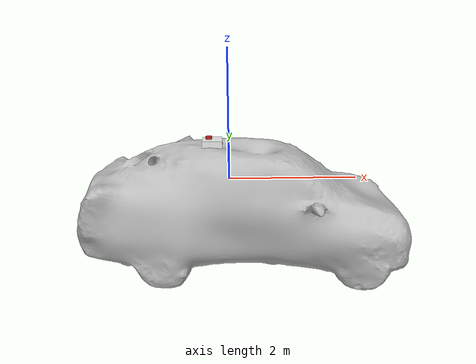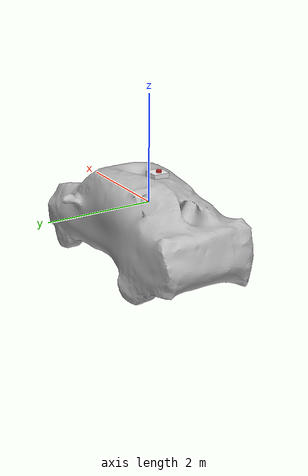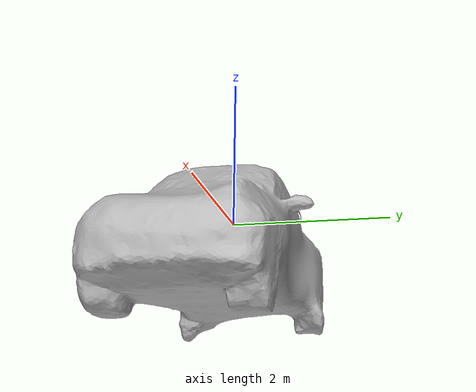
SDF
<?xml version='1.0'?>
<sdf version='1.7'>
  <model name='white-bot'>
    <model name='kare-whitecar'>
      <static>1</static>
      <link name='roof_link'>
        <pose>0 0 1.5 0 -0 0</pose>
        <self_collide>1</self_collide>
        <enable_wind>1</enable_wind>
        <kinematic>1</kinematic>
      </link>
      <link name='link'>
        <collision name='collision'>
          <geometry>
            <mesh>
              <scale>5 5 5</scale>
              <uri>model://kare-whitecar/meshes/kare-whitecar.obj</uri>
            </mesh>
          </geometry>
        </collision>
        <visual name='visual'>
          <geometry>
            <mesh>
              <scale>5 5 5</scale>
              <uri>model://kare-whitecar/meshes/kare-whitecar.obj</uri>
            </mesh>
          </geometry>
        </visual>
      </link>
      <pose>0.299701 0.023276 -0.492223 1.56718 0.006128 1.54946</pose>
    </model>
    <model name='my_bot'>
      <link name='base_link'>
        <inertial>
          <pose>0.041667 0 0.091667 0 -0 0</pose>
          <mass>0.6</mass>
          <inertia>
            <ixx>0.00559667</ixx>
            <ixy>0</ixy>
            <ixz>0.000416667</ixz>
            <iyy>0.005805</iyy>
            <iyz>0</iyz>
            <izz>0.00783333</izz>
          </inertia>
        </inertial>
        <sensor name='camera' type='camera'>
          <visualize>1</visualize>
          <update_rate>10</update_rate>
          <camera>
            <horizontal_fov>1.089</horizontal_fov>
            <image>
              <format>R8G8B8</format>
              <width>1920</width>
              <height>1080</height>
            </image>
            <clip>
              <near>0.05</near>
              <far>30</far>
            </clip>
          </camera>
          <plugin name='camera_controller' filename='libgazebo_ros_camera.so'>
            <frame_name>camera_link_optical</frame_name>
          </plugin>
          <pose>0.205 0 0.08 0 -0 0</pose>
        </sensor>
        <sensor name='laser' type='ray'>
          <visualize>0</visualize>
          <update_rate>10</update_rate>
          <ray>
            <scan>
              <horizontal>
                <samples>360</samples>
                <min_angle>-3.14</min_angle>
                <max_angle>3.14</max_angle>
                <resolution>1</resolution>
              </horizontal>
              <vertical>
                <samples>1</samples>
                <min_angle>0</min_angle>
                <max_angle>0</max_angle>
              </vertical>
            </scan>
            <range>
              <min>0.3</min>
              <max>12</max>
            </range>
          </ray>
          <plugin name='laser_controller' filename='libgazebo_ros_ray_sensor.so'>
            <ros>
              <argument>~/out:=scan</argument>
            </ros>
            <output_type>sensor_msgs/LaserScan</output_type>
            <frame_name>laser_frame</frame_name>
          </plugin>
          <pose>0 0 0.175 0 -0 0</pose>
        </sensor>
        <self_collide>0</self_collide>
        <enable_wind>0</enable_wind>
        <kinematic>0</kinematic>
        <pose>0 0 0 0 -0 0</pose>
        <visual name='base_link_fixed_joint_lump__chassis_visual'>
          <pose>0.05 0 0.075 0 -0 0</pose>
          <geometry>
            <box>
              <size>0.3 0.3 0.15</size>
            </box>
          </geometry>
          <material>
            <script>
              <name>Gazebo/White</name>
              <uri>file://media/materials/scripts/gazebo.material</uri>
            </script>
            <shader type='pixel'/>
          </material>
          <transparency>0</transparency>
          <cast_shadows>1</cast_shadows>
        </visual>
        <visual name='base_link_fixed_joint_lump__camera_link_visual_1'>
          <pose>0.205 0 0.08 0 -0 0</pose>
          <geometry>
            <box>
              <size>0.01 0.03 0.03</size>
            </box>
          </geometry>
          <material>
            <script>
              <name>Gazebo/Red</name>
              <uri>file://media/materials/scripts/gazebo.material</uri>
            </script>
            <shader type='pixel'/>
          </material>
          <transparency>0</transparency>
          <cast_shadows>1</cast_shadows>
        </visual>
        <visual name='base_link_fixed_joint_lump__laser_frame_visual_2'>
          <pose>0 0 0.175 0 -0 0</pose>
          <geometry>
            <cylinder>
              <length>0.04</length>
              <radius>0.05</radius>
            </cylinder>
          </geometry>
          <material>
            <script>
              <name>Gazebo/Red</name>
              <uri>file://media/materials/scripts/gazebo.material</uri>
            </script>
            <shader type='pixel'/>
          </material>
          <transparency>0</transparency>
          <cast_shadows>1</cast_shadows>
        </visual>
        <collision name='base_link_fixed_joint_lump__chassis_collision'>
          <laser_retro>0</laser_retro>
          <max_contacts>10</max_contacts>
          <pose>0.05 0 0.075 0 -0 0</pose>
          <geometry>
            <box>
              <size>0.3 0.3 0.15</size>
            </box>
          </geometry>
          <surface>
            <friction>
              <ode>
                <mu>1</mu>
                <mu2>1</mu2>
                <fdir1>0 0 0</fdir1>
                <slip1>0</slip1>
                <slip2>0</slip2>
              </ode>
              <torsional>
                <coefficient>1</coefficient>
                <patch_radius>0</patch_radius>
                <surface_radius>0</surface_radius>
                <use_patch_radius>1</use_patch_radius>
                <ode>
                  <slip>0</slip>
                </ode>
              </torsional>
            </friction>
            <bounce>
              <restitution_coefficient>0</restitution_coefficient>
              <threshold>1e+06</threshold>
            </bounce>
            <contact>
              <collide_without_contact>0</collide_without_contact>
              <collide_without_contact_bitmask>1</collide_without_contact_bitmask>
              <collide_bitmask>1</collide_bitmask>
              <ode>
                <soft_cfm>0</soft_cfm>
                <soft_erp>0.2</soft_erp>
                <kp>1e+13</kp>
                <kd>1</kd>
                <max_vel>0.01</max_vel>
                <min_depth>0</min_depth>
              </ode>
              <bullet>
                <split_impulse>1</split_impulse>
                <split_impulse_penetration_threshold>-0.01</split_impulse_penetration_threshold>
                <soft_cfm>0</soft_cfm>
                <soft_erp>0.2</soft_erp>
                <kp>1e+13</kp>
                <kd>1</kd>
              </bullet>
            </contact>
          </surface>
        </collision>
        <collision name='base_link_fixed_joint_lump__laser_frame_collision_1'>
          <laser_retro>0</laser_retro>
          <max_contacts>10</max_contacts>
          <pose>0 0 0.175 0 -0 0</pose>
          <geometry>
            <cylinder>
              <radius>0.05</radius>
              <length>0.04</length>
            </cylinder>
          </geometry>
          <surface>
            <friction>
              <ode>
                <mu>1</mu>
                <mu2>1</mu2>
                <fdir1>0 0 0</fdir1>
                <slip1>0</slip1>
                <slip2>0</slip2>
              </ode>
              <torsional>
                <coefficient>1</coefficient>
                <patch_radius>0</patch_radius>
                <surface_radius>0</surface_radius>
                <use_patch_radius>1</use_patch_radius>
                <ode>
                  <slip>0</slip>
                </ode>
              </torsional>
            </friction>
            <bounce>
              <restitution_coefficient>0</restitution_coefficient>
              <threshold>1e+06</threshold>
            </bounce>
            <contact>
              <collide_without_contact>0</collide_without_contact>
              <collide_without_contact_bitmask>1</collide_without_contact_bitmask>
              <collide_bitmask>1</collide_bitmask>
              <ode>
                <soft_cfm>0</soft_cfm>
                <soft_erp>0.2</soft_erp>
                <kp>1e+13</kp>
                <kd>1</kd>
                <max_vel>0.01</max_vel>
                <min_depth>0</min_depth>
              </ode>
              <bullet>
                <split_impulse>1</split_impulse>
                <split_impulse_penetration_threshold>-0.01</split_impulse_penetration_threshold>
                <soft_cfm>0</soft_cfm>
                <soft_erp>0.2</soft_erp>
                <kp>1e+13</kp>
                <kd>1</kd>
              </bullet>
            </contact>
          </surface>
        </collision>
      </link>
      <static>0</static>
      <allow_auto_disable>1</allow_auto_disable>
      <plugin name='diff_drive' filename='libgazebo_ros_diff_drive.so'>
        <left_joint>left_wheel_joint</left_joint>
        <right_joint>right_wheel_joint</right_joint>
        <wheel_separation>0.35</wheel_separation>
        <wheel_diameter>0.1</wheel_diameter>
        <max_wheel_torque>200</max_wheel_torque>
        <max_wheel_acceleration>50.0</max_wheel_acceleration>
        <odometry_frame>odom</odometry_frame>
        <robot_base_frame>base_link</robot_base_frame>
        <publish_odom>1</publish_odom>
        <publish_odom_tf>1</publish_odom_tf>
        <publish_wheel_tf>1</publish_wheel_tf>
      </plugin>
      <pose>-0.299676 -0.023279 0.492223 0 -0 0</pose>
    </model>
    <joint name='roof_link_JOINT_0' type='fixed'>
      <parent>kare-whitecar::roof_link</parent>
      <child>my_bot::base_link</child>
      <pose>0 0 0 0 -0 0</pose>
      <physics>
        <ode>
          <limit>
            <cfm>0</cfm>
            <erp>0.2</erp>
          </limit>
          <suspension>
            <cfm>0</cfm>
            <erp>0.2</erp>
          </suspension>
        </ode>
      </physics>
    </joint>
    <static>0</static>
    <allow_auto_disable>1</allow_auto_disable>
  </model>
</sdf>
